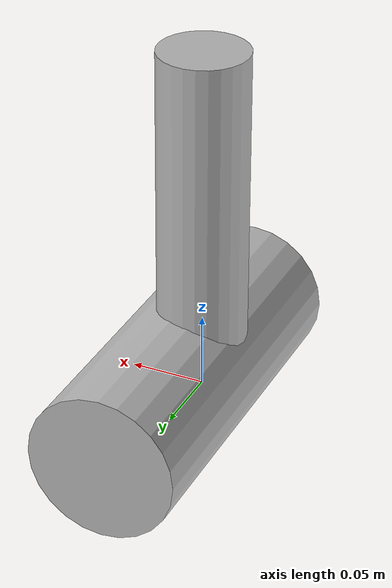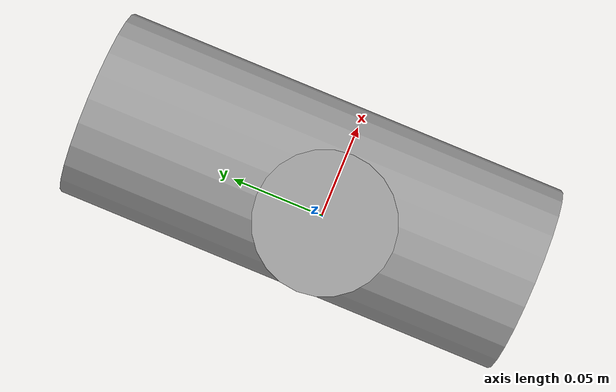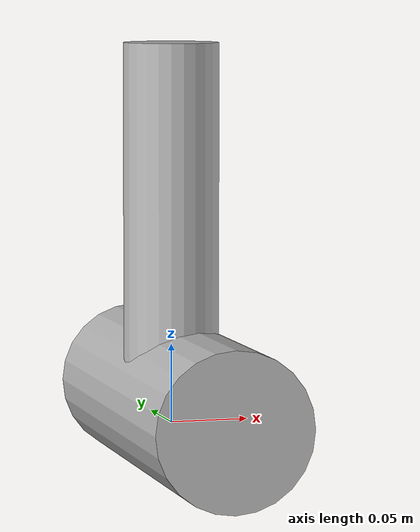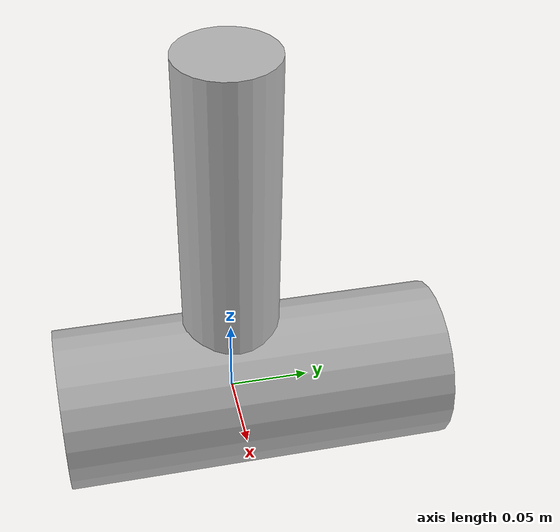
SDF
<?xml version='1.0'?>
<sdf version='1.6'>
		<model name="TwoBodiesPlusRevoluteJoint">
			<self_collide>true</self_collide>
			<pose>0.0 0.0 0.0 0.0 0.0 0.0</pose>
			<!-- Start of parts of the pmodel TwoBodiesPlusRevoluteJoint -->
			<!-- End of parts of the pmodel TwoBodiesPlusRevoluteJoint -->

			<!-- Start of links of the pmodel TwoBodiesPlusRevoluteJoint -->
			<!-- link full name is TwoBodiesPlusRevoluteJoint::base_link -->
			<link name="1-base_link">
					<pose>0.009999999776482582 0.009999999776482582 0.009999999776482582 1.5700000524520874 0.0 0.0</pose>
					<inertial>
						<pose>0.0 0.0 0.0 0.0 0.0 0.0</pose>
						<inertia>
							<ixx>0.4000000059604645</ixx>
							<ixy>0.0</ixy>
							<ixz>0.0</ixz>
							<iyy>0.4000000059604645</iyy>
							<iyz>0.0</iyz>
							<izz>0.20000000298023224</izz>
						</inertia>
						<mass>10.0</mass>
					</inertial>
					<!-- body full name is TwoBodiesPlusRevoluteJoint::base_link::base_body -->
					<collision name="1--base_body">
						<laser_retro>0.0</laser_retro>
						<pose>0.0 0.0 0.0 0.0 0.0 0.0</pose>
						<geometry>
							<cylinder>
								<radius>0.05000000074505806</radius>
								<length>0.23999999463558197</length>
							</cylinder>
						</geometry>
						<surface>
							<bounce>
								<restitution_coefficient>0.0</restitution_coefficient>
								<threshold>100000.0</threshold>
							</bounce>
							<friction>
								<ode>
									<mu>1.0</mu>
									<mu2>1.0</mu2>
									<fdir1>0.0 0.0 0.0</fdir1>
									<slip1>0.0</slip1>
									<slip2>0.0</slip2>
								</ode>
								<torsional>
									<coefficient>1.0</coefficient>
									<surface_radius>0.0</surface_radius>
								</torsional>
							</friction>
						</surface>
					</collision>
					<visual name="1--base_body">
						<laser_retro>0.0</laser_retro>
						<pose>0.0 0.0 0.0 0.0 0.0 0.0</pose>
						<geometry>
							<cylinder>
								<radius>0.05000000074505806</radius>
								<length>0.23999999463558197</length>
							</cylinder>
						</geometry>
						<surface>
							<bounce>
								<restitution_coefficient>0.0</restitution_coefficient>
								<threshold>100000.0</threshold>
							</bounce>
							<friction>
								<ode>
									<mu>1.0</mu>
									<mu2>1.0</mu2>
									<fdir1>0.0 0.0 0.0</fdir1>
									<slip1>0.0</slip1>
									<slip2>0.0</slip2>
								</ode>
								<torsional>
									<coefficient>1.0</coefficient>
									<surface_radius>0.0</surface_radius>
								</torsional>
							</friction>
						</surface>
					</visual>
			</link>
			<!-- link full name is TwoBodiesPlusRevoluteJoint::second_link -->
			<link name="2-second_link">
					<pose>0.0 0.0 0.11999999731779099 0.0 0.0 0.0</pose>
					<inertial>
						<pose>0.0 0.0 0.0 0.0 0.0 0.0</pose>
						<inertia>
							<ixx>0.0</ixx>
							<ixy>0.10000000149011612</ixy>
							<ixz>0.0</ixz>
							<iyy>2.835000050254166E-4</iyy>
							<iyz>0.0</iyz>
							<izz>3.239999932702631E-4</izz>
						</inertia>
						<mass>10.0</mass>
					</inertial>
					<!-- body full name is TwoBodiesPlusRevoluteJoint::second_link::second_body -->
					<collision name="2--second_body">
						<laser_retro>0.0</laser_retro>
						<pose>0.0 0.0 0.0 0.0 0.0 0.0</pose>
						<geometry>
							<cylinder>
								<radius>0.029999999329447746</radius>
								<length>0.23999999463558197</length>
							</cylinder>
						</geometry>
						<surface>
							<bounce>
								<restitution_coefficient>0.0</restitution_coefficient>
								<threshold>100000.0</threshold>
							</bounce>
							<friction>
								<ode>
									<mu>1.0</mu>
									<mu2>1.0</mu2>
									<fdir1>0.0 0.0 0.0</fdir1>
									<slip1>0.0</slip1>
									<slip2>0.0</slip2>
								</ode>
								<torsional>
									<coefficient>1.0</coefficient>
									<surface_radius>0.0</surface_radius>
								</torsional>
							</friction>
						</surface>
					</collision>
					<visual name="2--second_body">
						<laser_retro>0.0</laser_retro>
						<pose>0.0 0.0 0.0 0.0 0.0 0.0</pose>
						<geometry>
							<cylinder>
								<radius>0.029999999329447746</radius>
								<length>0.23999999463558197</length>
							</cylinder>
						</geometry>
						<surface>
							<bounce>
								<restitution_coefficient>0.0</restitution_coefficient>
								<threshold>100000.0</threshold>
							</bounce>
							<friction>
								<ode>
									<mu>1.0</mu>
									<mu2>1.0</mu2>
									<fdir1>0.0 0.0 0.0</fdir1>
									<slip1>0.0</slip1>
									<slip2>0.0</slip2>
								</ode>
								<torsional>
									<coefficient>1.0</coefficient>
									<surface_radius>0.0</surface_radius>
								</torsional>
							</friction>
						</surface>
					</visual>
			</link>
			<!-- End of links of the pmodel TwoBodiesPlusRevoluteJoint -->

			<!-- Start of joints of the pmodel TwoBodiesPlusRevoluteJoint -->
			<!-- Full name of joint: TwoBodiesPlusRevoluteJoint::second_link::my_revolute_joint from TwoBodiesPlusRevoluteJoint::second_link to TwoBodiesPlusRevoluteJoint::base_link-->
			<joint name="3-my_revolute_joint" type="revolute">
				<pose>-0.009999999776482582 0.10999199992599679 0.010087586772713762 -1.5700000524520874 -0.0 0.0</pose>
				<parent>2-second_link</parent>
				<child>1-base_link</child>
				<!-- WARNING: The SDF generator relies on annotations of the joint 3-my_revolute_joint to specify in SDF aspects of the joint that are
					 accounted for in the equations. -->
				<axis>
					<xyz>1 2 3</xyz>
				</axis>
			</joint>
			<!-- End of joints of the pmodel TwoBodiesPlusRevoluteJoint -->

			<!-- Start of fixed connections of the pmodel TwoBodiesPlusRevoluteJoint -->
			<!-- End of fixed connections of the pmodel TwoBodiesPlusRevoluteJoint -->
		</model>
</sdf>
